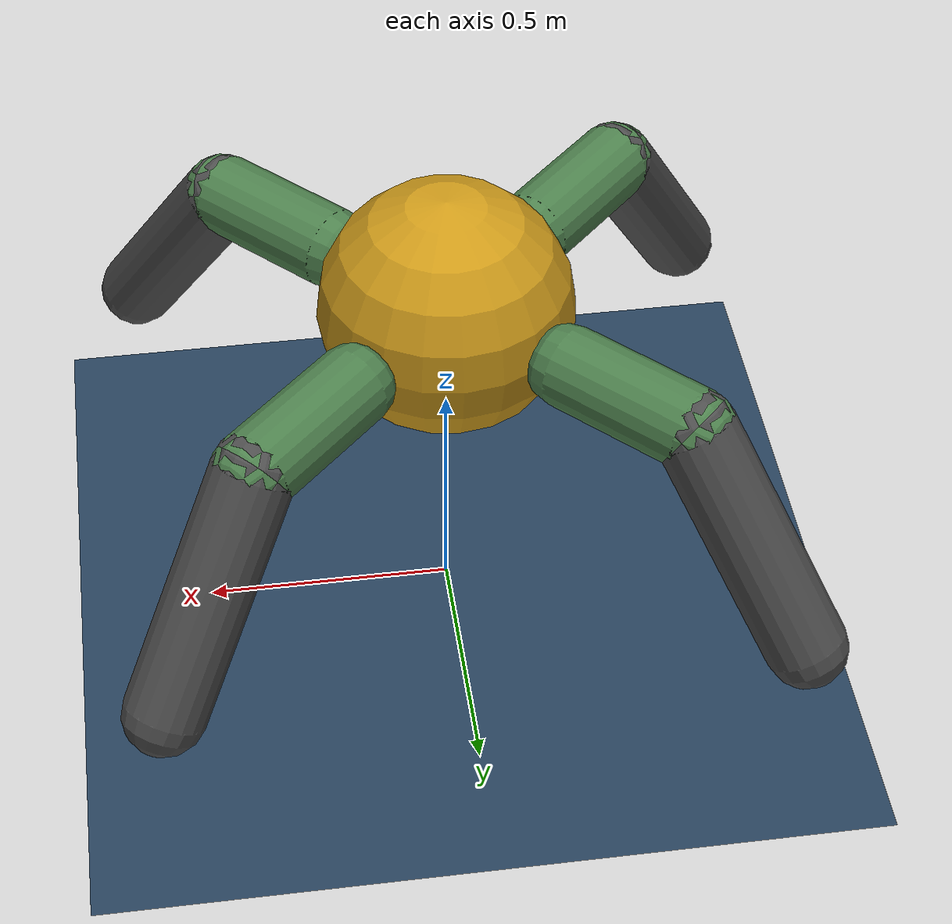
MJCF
<mujoco model="ant_simple">
  <option timestep="0.005" gravity="0 0 -9.81"/>

  <visual>
    <headlight ambient="0.4 0.4 0.4" diffuse="0.6 0.6 0.6" specular="0.1 0.1 0.1"/>
    <rgba haze="0.15 0.25 0.35 1"/>
  </visual>

  <worldbody>
    <light pos="0 0 5" dir="0 0 -1" directional="true"/>
    <geom name="floor" type="plane" size="0 0 0.05" material="grid"/>

    <body name="torso" pos="0 0 0.75">
      <freejoint name="root"/>
      <geom name="torso_geom" type="sphere" size="0.25"
            rgba="0.8 0.6 0.1 1" mass="10"/>

      <body name="front_left_leg" pos="0.2 0.2 0">
        <joint name="hip_fl" type="hinge" axis="0 0 1" limited="true"
               range="-30 30" damping="1"/>
        <geom name="fl_upper" type="capsule" fromto="0 0 0 0.2 0.2 0"
              size="0.08" rgba="0.3 0.5 0.3 1" mass="1"/>
        <body name="front_left_foot" pos="0.2 0.2 0">
          <joint name="ankle_fl" type="hinge" axis="-1 1 0" limited="true"
                 range="30 70" damping="1"/>
          <geom name="fl_lower" type="capsule" fromto="0 0 0 0.2 0.2 -0.4"
                size="0.08" rgba="0.3 0.3 0.3 1" mass="1"/>
        </body>
      </body>

      <body name="front_right_leg" pos="-0.2 0.2 0">
        <joint name="hip_fr" type="hinge" axis="0 0 1" limited="true"
               range="-30 30" damping="1"/>
        <geom name="fr_upper" type="capsule" fromto="0 0 0 -0.2 0.2 0"
              size="0.08" rgba="0.3 0.5 0.3 1" mass="1"/>
        <body name="front_right_foot" pos="-0.2 0.2 0">
          <joint name="ankle_fr" type="hinge" axis="1 1 0" limited="true"
                 range="-70 -30" damping="1"/>
          <geom name="fr_lower" type="capsule" fromto="0 0 0 -0.2 0.2 -0.4"
                size="0.08" rgba="0.3 0.3 0.3 1" mass="1"/>
        </body>
      </body>

      <body name="back_left_leg" pos="-0.2 -0.2 0">
        <joint name="hip_bl" type="hinge" axis="0 0 1" limited="true"
               range="-30 30" damping="1"/>
        <geom name="bl_upper" type="capsule" fromto="0 0 0 -0.2 -0.2 0"
              size="0.08" rgba="0.3 0.5 0.3 1" mass="1"/>
        <body name="back_left_foot" pos="-0.2 -0.2 0">
          <joint name="ankle_bl" type="hinge" axis="1 1 0" limited="true"
                 range="-70 -30" damping="1"/>
          <geom name="bl_lower" type="capsule" fromto="0 0 0 -0.2 -0.2 -0.4"
                size="0.08" rgba="0.3 0.3 0.3 1" mass="1"/>
        </body>
      </body>

      <body name="back_right_leg" pos="0.2 -0.2 0">
        <joint name="hip_br" type="hinge" axis="0 0 1" limited="true"
               range="-30 30" damping="1"/>
        <geom name="br_upper" type="capsule" fromto="0 0 0 0.2 -0.2 0"
              size="0.08" rgba="0.3 0.5 0.3 1" mass="1"/>
        <body name="back_right_foot" pos="0.2 -0.2 0">
          <joint name="ankle_br" type="hinge" axis="-1 1 0" limited="true"
                 range="30 70" damping="1"/>
          <geom name="br_lower" type="capsule" fromto="0 0 0 0.2 -0.2 -0.4"
                size="0.08" rgba="0.3 0.3 0.3 1" mass="1"/>
        </body>
      </body>
    </body>
  </worldbody>

  <actuator>
    <motor name="hip_fl_motor" joint="hip_fl" ctrllimited="true" ctrlrange="-1 1" gear="150"/>
    <motor name="ankle_fl_motor" joint="ankle_fl" ctrllimited="true" ctrlrange="-1 1" gear="150"/>
    <motor name="hip_fr_motor" joint="hip_fr" ctrllimited="true" ctrlrange="-1 1" gear="150"/>
    <motor name="ankle_fr_motor" joint="ankle_fr" ctrllimited="true" ctrlrange="-1 1" gear="150"/>
    <motor name="hip_bl_motor" joint="hip_bl" ctrllimited="true" ctrlrange="-1 1" gear="150"/>
    <motor name="ankle_bl_motor" joint="ankle_bl" ctrllimited="true" ctrlrange="-1 1" gear="150"/>
    <motor name="hip_br_motor" joint="hip_br" ctrllimited="true" ctrlrange="-1 1" gear="150"/>
    <motor name="ankle_br_motor" joint="ankle_br" ctrllimited="true" ctrlrange="-1 1" gear="150"/>
  </actuator>

  <asset>
    <texture type="skybox" builtin="gradient" rgb1="0.1 0.1 0.2"
             rgb2="0 0 0" width="512" height="512"/>
    <texture name="grid" type="2d" builtin="checker" rgb1=".1 .2 .3"
             rgb2=".2 .3 .4" width="512" height="512" mark="edge"
             markrgb=".8 .8 .8"/>
    <material name="grid" texture="grid" texrepeat="1 1"
              texuniform="true" reflectance=".2"/>
  </asset>
</mujoco>
